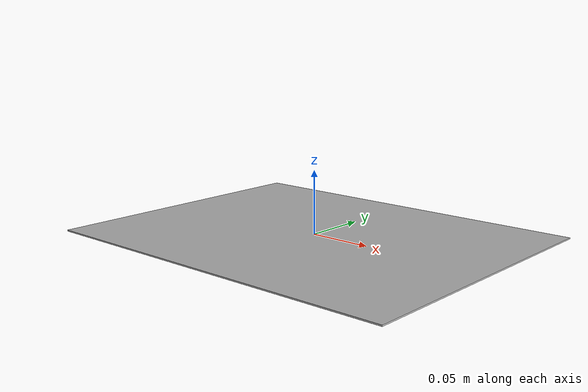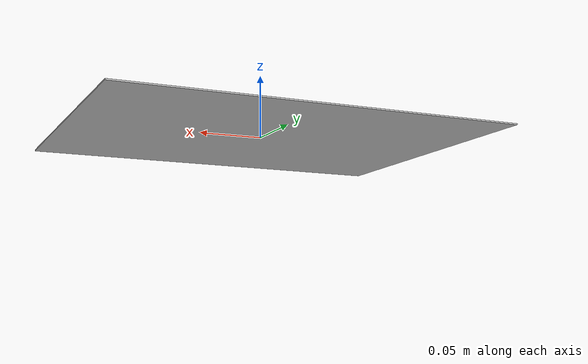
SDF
<?xml version='1.0'?>
<sdf version='1.4'>
    <model name="atags16_1">
        <static>true</static>
        <link name='link'>

            <collision name ='collision'>
                <geometry>
                    <box>
                        <size>0.3055 0.2365 .001</size>
                    </box>
                </geometry>
            </collision>
            <visual name='visual'>
                <geometry>
                    <box>
                        <size>0.3055 0.2365 .001</size>
                    </box>
                </geometry>

                <material>
                    <script>
                        <uri>model://atags16_1/materials/scripts</uri>
                        <uri>model://atags16_1/materials/textures</uri>
                        <name>atags16_1/Diffuse</name>
                    </script>
                </material>
            </visual>
        </link>
    </model>
</sdf>
